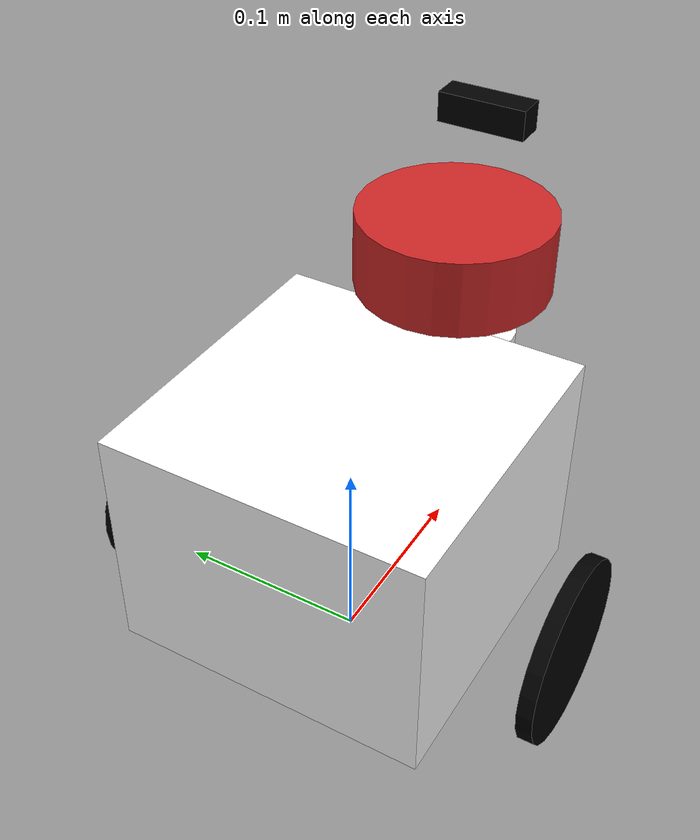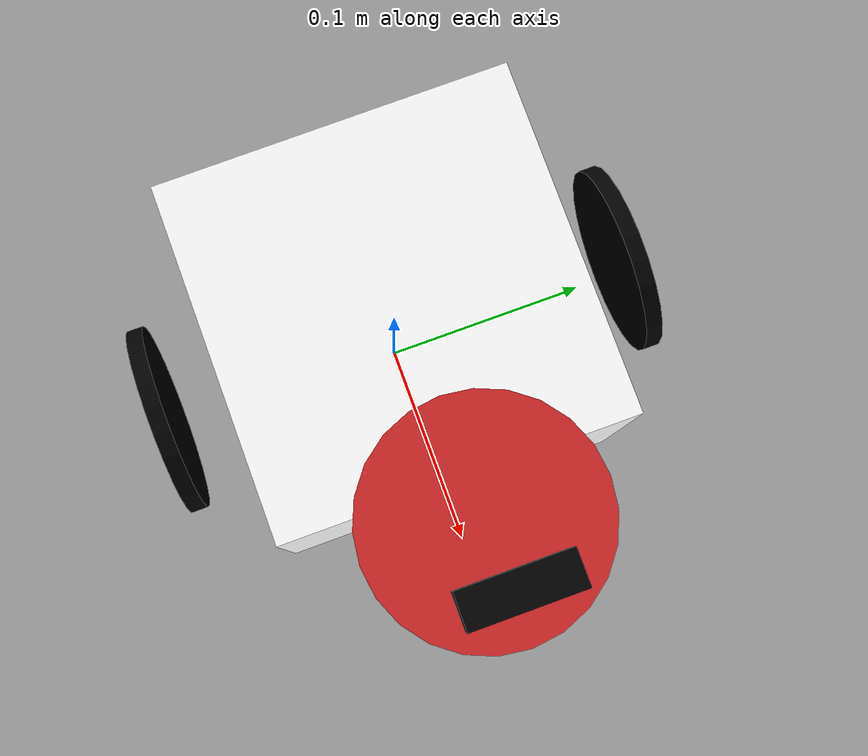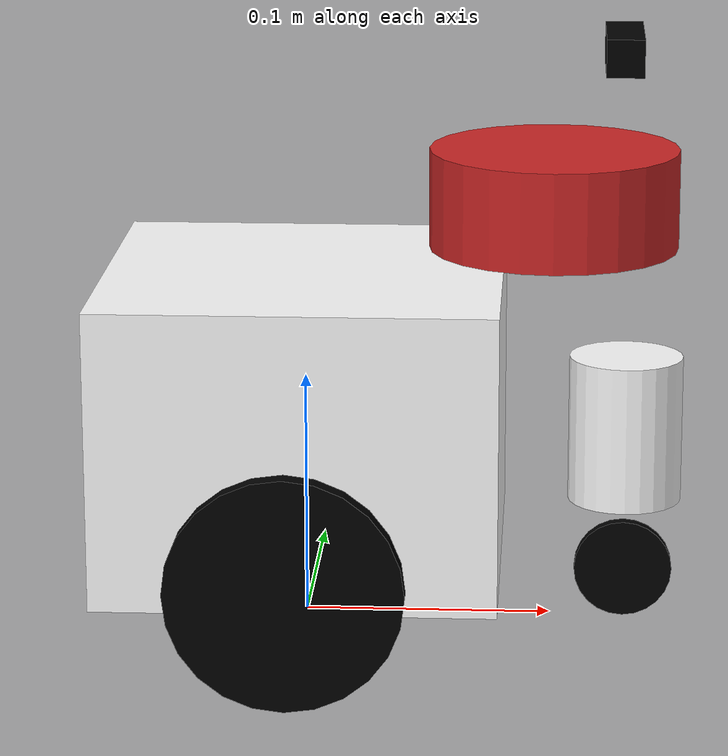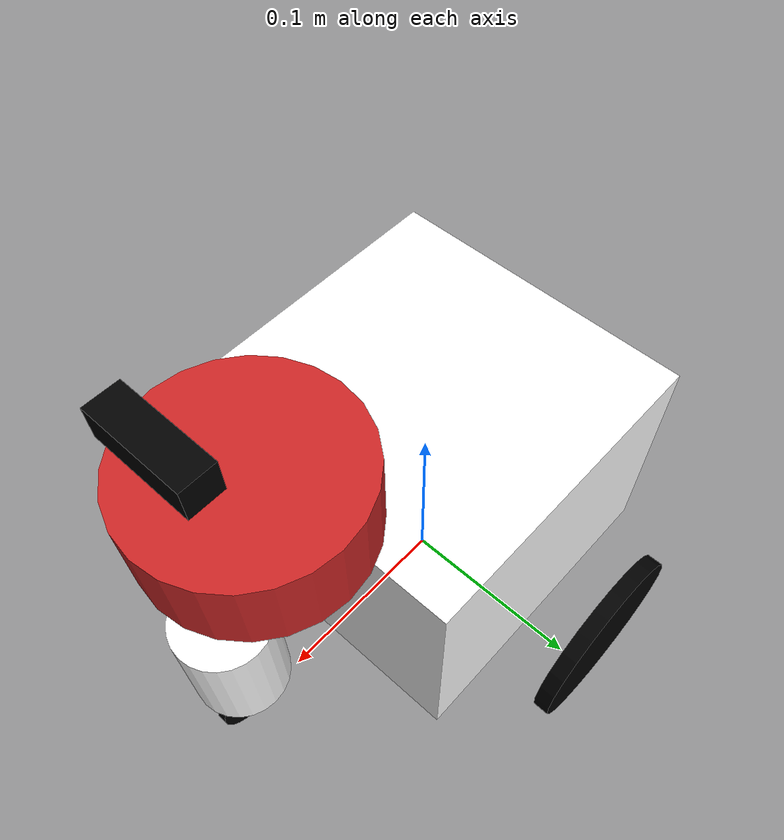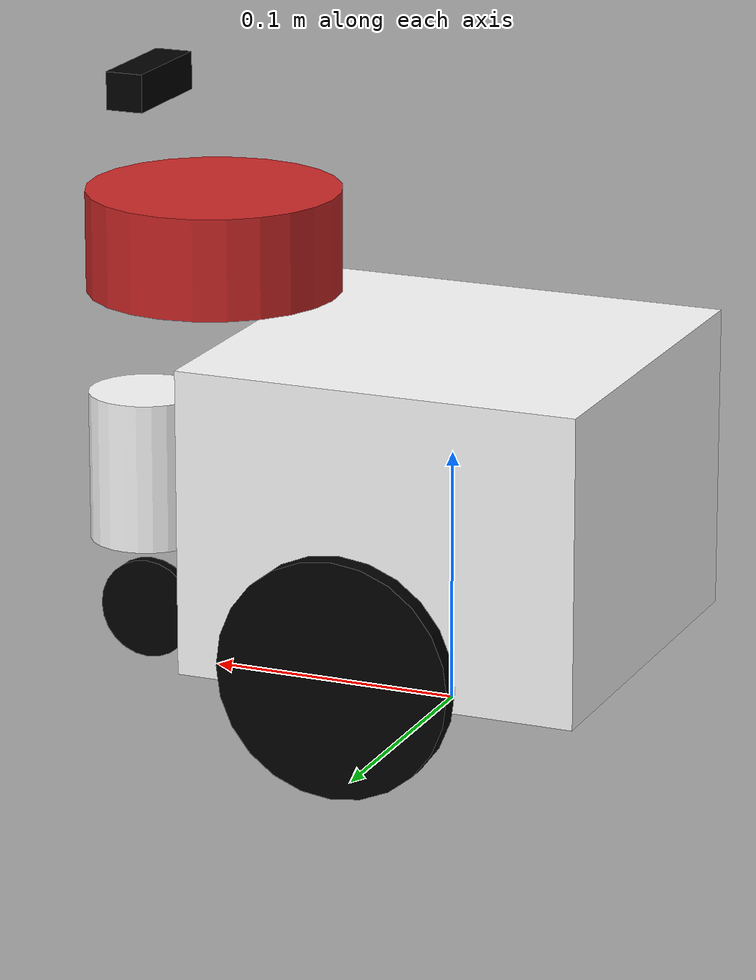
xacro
<?xml version="1.0"?>
<robot xmlns:xacro="http://www.ros.org/wiki/xacro" name="test_robot">
<xacro:include filename="lidar.xacro"/>
  <link name="base_link">
    <visual>
      <geometry>
        <box size="0.16 0.16 0.12"/>
      </geometry>
      <origin rpy="0 0 0" xyz="0 0 0.085"/>
      <material name="white">
        <color rgba="1 1 1 1"/>
      </material>
    </visual>
  </link>

  <link name="lwheel">
    <visual>
      <geometry>
        <cylinder length="0.008" radius="0.046"/>
      </geometry>
      <origin rpy="0 0 0" xyz="0 0 0"/>
      <material name="black">
        <color rgba="0 0 0 1"/>
      </material>
    </visual>
  </link>

  <joint name="base_to_lwheel" type="fixed">
    <parent link="base_link"/>
    <child link="lwheel"/>
    <origin xyz="0 0.115 0.046" rpy="1.5708 0 0"/>
  </joint>

  <link name="rwheel">
    <visual>
      <geometry>
        <cylinder length="0.008" radius="0.046"/>
      </geometry>
      <origin rpy="0 0 0" xyz="0 0 0"/>
      <material name="black">
        <color rgba="0 0 0 1"/>
      </material>
    </visual>
  </link>

  <joint name="base_to_rwheel" type="fixed">
    <parent link="base_link"/>
    <child link="rwheel"/>
    <origin xyz="0 -0.115 0.046" rpy="-1.5708 0 0"/>
  </joint>

  <link name="fwheel_attach">
    <visual>
      <geometry>
        <cylinder length="0.060" radius="0.023"/>
      </geometry>
      <origin rpy="0 0 0" xyz="0.13 0 0.08"/>
      <material name="white">
        <color rgba="1 1 1 1"/>
      </material>
    </visual>
  </link>

  <joint name="base_to_fattach" type="fixed">
    <parent link="base_link"/>
    <child link="fwheel_attach"/>
    <origin xyz="0 0 0" rpy="0 0 0"/>
  </joint>

  <link name="fwheel">
    <visual>
      <geometry>
        <cylinder length="0.005" radius="0.020"/>
      </geometry>
      <origin rpy="1.578 0 0" xyz="0 0 0"/>
      <material name="black">
        <color rgba="0 0 0 1"/>
      </material>
    </visual>
  </link>

  <joint name="base_to_fwheel" type="fixed">
    <parent link="base_link"/>
    <child link="fwheel"/>
    <origin xyz="0.13 0 0.02" rpy="0 0 0"/>
  </joint>

  <link name="scanner">
    <visual>
      <geometry>
        <box size="0.015 0.045 0.015"/>
      </geometry>
      <origin rpy="0 0 0" xyz="0.022 0 0.015"/>
      <material name="black">
        <color rgba="0 0 0 1"/>
      </material>
    </visual>
  </link>

  <joint name="base_to_scanner" type="fixed">
    <parent link="base_link"/>
    <child link="scanner"/>
    <origin xyz="0.105 0 0.22" rpy="0 0 0"/>
  </joint>

</robot>

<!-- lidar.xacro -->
<robot xmlns:xacro="http://www.ros.org/wiki/xacro" >

    <joint name="laser_joint" type="fixed">
        <parent link="base_link"/>
        <child link="laser_frame"/>
        <origin xyz="0.1 0 0.175" rpy="0 0 0"/>
    </joint>

    <link name="laser_frame">
        <visual>
            <geometry>
                <cylinder radius="0.05" length="0.04"/>
            </geometry>
            <material name="red"/>
        </visual>
        <collision>
            <geometry>
                <cylinder radius="0.05" length="0.04"/>
            </geometry>
        </collision>
            <inertial>
      <origin xyz="0 0 0" rpy="0 0 0"/>
      <mass value="0.1"/>

      <inertia
        ixx="7.6e-06" ixy="0.0" ixz="0.0"
        iyy="7.6e-06" iyz="0.0"
        izz="1.25e-04"/>
    </inertial>

    </link>

    <gazebo reference="laser_frame">
        <material>Gazebo/Red</material>

        <sensor name="laser" type="ray">
            <pose> 0 0 0 0 0 0 </pose>
            <visualize>true</visualize>
            <update_rate>10</update_rate>
            <ray>
                <scan>
                    <horizontal>
                        <samples>360</samples>
                        <min_angle>-3.14</min_angle>
                        <max_angle>3.14</max_angle>
                    </horizontal>
                </scan>
                <range>
                    <min>0.3</min>
                    <max>12</max>
                </range>
            </ray>
            <plugin name="laser_controller" filename="libgazebo_ros_ray_sensor.so">
                <ros>
                    <argument>~/out:=scan</argument>
                </ros>
                <output_type>sensor_msgs/LaserScan</output_type>
                <frame_name>laser_frame</frame_name>
            </plugin>
        </sensor>
    </gazebo>

</robot>
